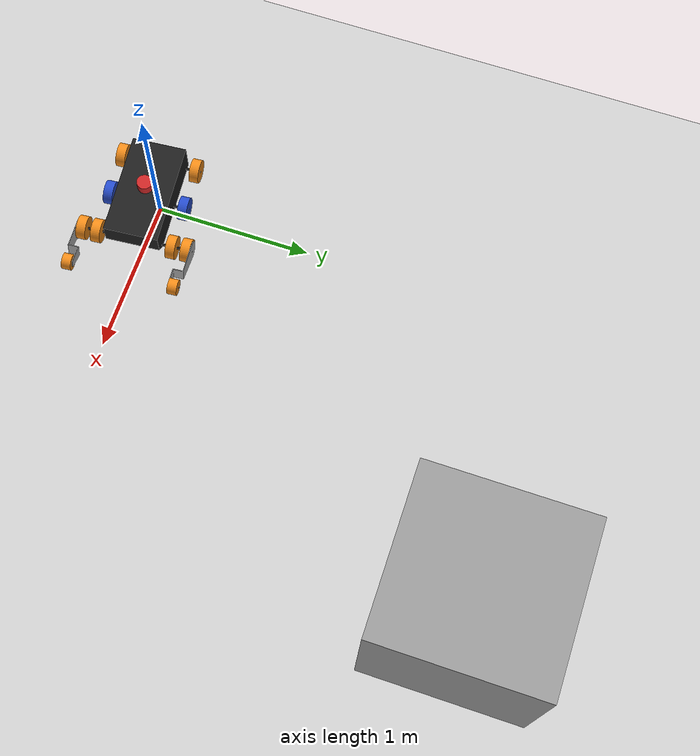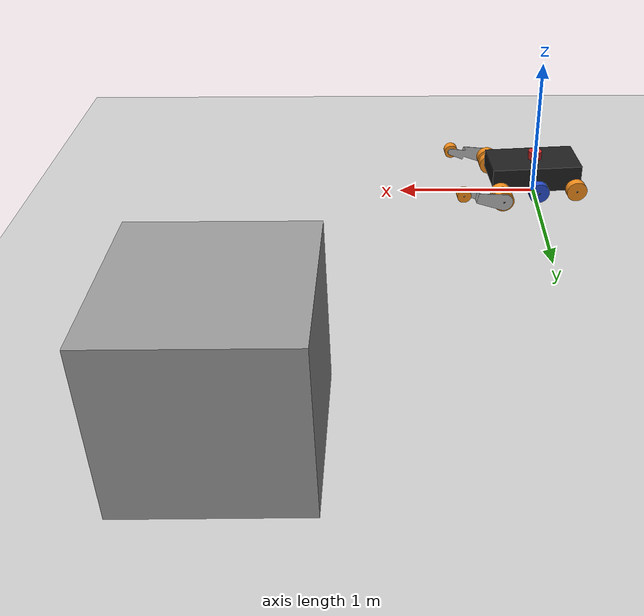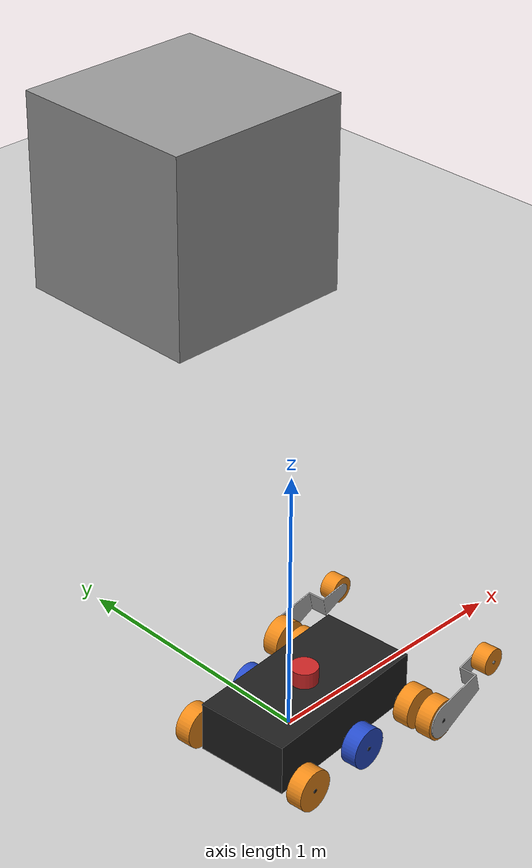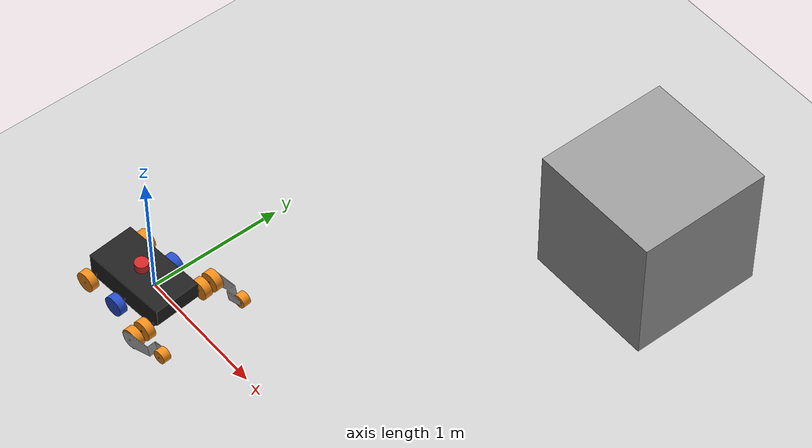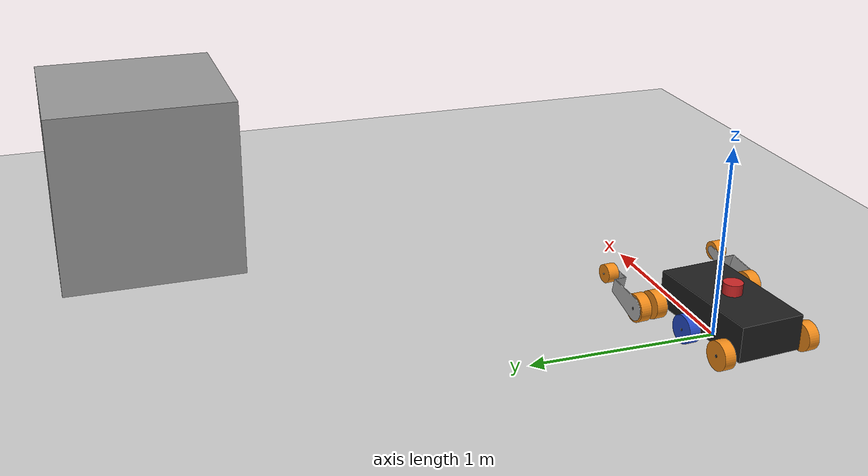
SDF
<sdf version="1.7">
 <world name="default">
  <light name="sun" type="directional">
   <pose>0 0 10 0 -0 0</pose>
   <diffuse>0.8 0.8 0.8 1</diffuse>
   <specular>0.2 0.2 0.2 1</specular>
   <attenuation>
    <range>1000</range>
    <constant>0.9</constant>
    <linear>0.01</linear>
    <quadratic>0.001</quadratic>
   </attenuation>
   <direction>-0.5 0.1 -0.9</direction>
   <spot><inner_angle>0</inner_angle><outer_angle>0</outer_angle><falloff>0</falloff></spot>
  </light>
  <model name="ground_plane">
   <static>1</static>
   <link name="link">
    <collision name="collision">
     <geometry><plane><normal>0 0 1</normal><size>100 100</size></plane></geometry>
     <surface><friction><ode><mu>100</mu><mu2>50</mu2></ode></friction></surface>
    </collision>
    <visual name="visual">
     <cast_shadows>0</cast_shadows>
     <geometry><plane><normal>0 0 1</normal><size>100 100</size></plane></geometry>
     <material>
      <script><uri>file://media/materials/scripts/gazebo.material</uri><name>Gazebo/Grey</name></script>
     </material>
    </visual>
   </link>
  </model>
  <gravity>0 0 -9.8</gravity>
  <magnetic_field>6e-06 2.3e-05 -4.2e-05</magnetic_field>
  <atmosphere type="adiabatic"/>
  <physics type="ode">
   <max_step_size>0.001</max_step_size>
   <real_time_factor>1</real_time_factor>
   <real_time_update_rate>1000</real_time_update_rate>
  </physics>
  <scene><ambient>0.4 0.4 0.4 1</ambient><background>0.7 0.7 0.7 1</background><shadows>1</shadows></scene>
  <spherical_coordinates>
   <surface_model>EARTH_WGS84</surface_model>
   <latitude_deg>0</latitude_deg>
   <longitude_deg>0</longitude_deg>
   <elevation>0</elevation>
   <heading_deg>0</heading_deg>
  </spherical_coordinates>
  <model name="hendbot">
   <link name="base_link">
    <inertial>
     <pose>-0.003005 -0 0.083073 0 -0 0</pose>
     <mass>54.9089</mass>
     <inertia>
      <ixx>1.31716</ixx>
      <ixy>-1.29347e-07</ixy>
      <ixz>-0.0104342</ixz>
      <iyy>2.67172</iyy>
      <iyz>1.97052e-07</iyz>
      <izz>3.62612</izz>
     </inertia>
    </inertial>
    <collision name="base_link_fixed_joint_lump__hend_link_collision">
     <pose>-0.33246 0 0 0 -0 0</pose>
     <geometry><mesh><scale>1 1 1</scale><uri>model://hendbot/meshes/base_link.STL</uri></mesh></geometry>
    </collision>
    <collision name="base_link_fixed_joint_lump__LBW_Link_collision_1">
     <pose>-0.28246 0.215 0.035 1.5708 -1.1717 -3.14159</pose>
     <geometry><mesh><scale>1 1 1</scale><uri>model://hendbot/meshes/LBW_Link.STL</uri></mesh></geometry>
     <surface><friction><ode><mu>0.1</mu><mu2>0.1</mu2></ode></friction></surface>
    </collision>
    <collision name="base_link_fixed_joint_lump__LFW_Link_collision_2">
     <pose>0.28245 0.215 0.035103 1.5708 0.76776 3.14159</pose>
     <geometry><mesh><scale>1 1 1</scale><uri>model://hendbot/meshes/LFW_Link.STL</uri></mesh></geometry>
     <surface><friction><ode><mu>0.1</mu><mu2>0.1</mu2></ode></friction></surface>
    </collision>
    <collision name="base_link_fixed_joint_lump__RBW_Link_collision_3">
     <pose>-0.28246 -0.215 0.035 -1.5708 0.11175 -0</pose>
     <geometry><mesh><scale>1 1 1</scale><uri>model://hendbot/meshes/RBW_Link.STL</uri></mesh></geometry>
     <surface><friction><ode><mu>0.1</mu><mu2>0.1</mu2></ode></friction></surface>
    </collision>
    <collision name="base_link_fixed_joint_lump__RFW_Link_collision_4">
     <pose>0.28245 -0.215 0.035103 1.5708 0.34292 3.14159</pose>
     <geometry><mesh><scale>1 1 1</scale><uri>model://hendbot/meshes/RFW_Link.STL</uri></mesh></geometry>
     <surface><friction><ode><mu>0.1</mu><mu2>0.1</mu2></ode></friction></surface>
    </collision>
    <collision name="base_link_fixed_joint_lump__laser_frame_collision_5">
     <pose>-0.01246 0 0.22 0 -0 0</pose>
     <geometry><cylinder><length>0.06</length><radius>0.05</radius></cylinder></geometry>
    </collision>
    <visual name="base_link_fixed_joint_lump__hend_link_visual">
     <pose>-0.33246 0 0 0 -0 0</pose>
     <geometry><mesh><scale>1 1 1</scale><uri>model://hendbot/meshes/base_link.STL</uri></mesh></geometry>
     <material>
      <script><name>Gazebo/Black</name><uri>file://media/materials/scripts/gazebo.material</uri></script>
     </material>
    </visual>
    <visual name="base_link_fixed_joint_lump__LBW_Link_visual_1">
     <pose>-0.28246 0.215 0.035 1.5708 -1.1717 -3.14159</pose>
     <geometry><mesh><scale>1 1 1</scale><uri>model://hendbot/meshes/LBW_Link.STL</uri></mesh></geometry>
     <material>
      <script><name>Gazebo/Orange</name><uri>file://media/materials/scripts/gazebo.material</uri></script>
     </material>
    </visual>
    <visual name="base_link_fixed_joint_lump__LFW_Link_visual_2">
     <pose>0.28245 0.215 0.035103 1.5708 0.76776 3.14159</pose>
     <geometry><mesh><scale>1 1 1</scale><uri>model://hendbot/meshes/LFW_Link.STL</uri></mesh></geometry>
     <material>
      <script><name>Gazebo/Orange</name><uri>file://media/materials/scripts/gazebo.material</uri></script>
     </material>
    </visual>
    <visual name="base_link_fixed_joint_lump__RBW_Link_visual_3">
     <pose>-0.28246 -0.215 0.035 -1.5708 0.11175 -0</pose>
     <geometry><mesh><scale>1 1 1</scale><uri>model://hendbot/meshes/RBW_Link.STL</uri></mesh></geometry>
     <material>
      <script><name>Gazebo/Orange</name><uri>file://media/materials/scripts/gazebo.material</uri></script>
     </material>
    </visual>
    <visual name="base_link_fixed_joint_lump__RFW_Link_visual_4">
     <pose>0.28245 -0.215 0.035103 1.5708 0.34292 3.14159</pose>
     <geometry><mesh><scale>1 1 1</scale><uri>model://hendbot/meshes/RFW_Link.STL</uri></mesh></geometry>
     <material>
      <script><name>Gazebo/Orange</name><uri>file://media/materials/scripts/gazebo.material</uri></script>
     </material>
    </visual>
    <visual name="base_link_fixed_joint_lump__laser_frame_visual_5">
     <pose>-0.01246 0 0.22 0 -0 0</pose>
     <geometry><cylinder><length>0.06</length><radius>0.05</radius></cylinder></geometry>
     <material>
      <script><name>Gazebo/Red</name><uri>file://media/materials/scripts/gazebo.material</uri></script>
     </material>
    </visual>
    <sensor name="laser" type="ray">
     <visualize>0</visualize>
     <update_rate>10</update_rate>
     <ray>
      <scan>
       <horizontal>
        <samples>360</samples>
        <min_angle>-3.14</min_angle>
        <max_angle>3.14</max_angle>
        <resolution>1</resolution>
       </horizontal>
       <vertical><samples>1</samples><min_angle>0</min_angle><max_angle>0</max_angle></vertical>
      </scan>
      <range><min>0.1</min><max>12</max></range>
     </ray>
     <plugin name="laser_controller" filename="libgazebo_ros_ray_sensor.so">
      <ros><argument>~/out:=scan</argument></ros>
      <output_type>sensor_msgs/LaserScan</output_type>
      <frame_name>laser_frame</frame_name>
     </plugin>
     <pose>-0.01246 0 0.22 0 -0 0</pose>
    </sensor>
   </link>
   <joint name="WLBelt_Joint" type="revolute">
    <pose relative_to="base_link">4e-05 0.215 0.035052 1.5708 0.35384 3.14159</pose>
    <parent>base_link</parent>
    <child>WLBelt_Link</child>
    <axis>
     <xyz>0 0 1</xyz>
     <limit><effort>100</effort><velocity>100</velocity><lower>-1e+16</lower><upper>1e+16</upper></limit>
     <dynamics>
      <damping>0.1</damping>
      <friction>0.1</friction>
      <spring_reference>0</spring_reference>
      <spring_stiffness>0</spring_stiffness>
     </dynamics>
    </axis>
   </joint>
   <link name="WLBelt_Link">
    <pose relative_to="WLBelt_Joint">0 0 0 0 -0 0</pose>
    <inertial>
     <pose>6e-06 2e-06 0.03 0 -0 0</pose>
     <mass>2.8302</mass>
     <inertia>
      <ixx>0.00487432</ixx>
      <ixy>1.0842e-19</ixy>
      <ixz>-5.95761e-21</ixz>
      <iyy>0.00487432</iyy>
      <iyz>-3.72125e-22</iyz>
      <izz>0.00805052</izz>
     </inertia>
    </inertial>
    <collision name="WLBelt_Link_collision">
     <geometry><mesh><scale>1 1 1</scale><uri>model://hendbot/meshes/WLBelt_Link.STL</uri></mesh></geometry>
    </collision>
    <visual name="WLBelt_Link_visual">
     <geometry><mesh><scale>1 1 1</scale><uri>model://hendbot/meshes/WLBelt_Link.STL</uri></mesh></geometry>
     <material>
      <script><name>Gazebo/Blue</name><uri>file://media/materials/scripts/gazebo.material</uri></script>
     </material>
    </visual>
   </link>
   <joint name="WRBelt_Joint" type="revolute">
    <pose relative_to="base_link">4e-05 -0.215 0.035052 -1.5708 0.65732 0</pose>
    <parent>base_link</parent>
    <child>WRBelt_Link</child>
    <axis>
     <xyz>0 0 1</xyz>
     <limit><effort>100</effort><velocity>100</velocity><lower>-1e+16</lower><upper>1e+16</upper></limit>
     <dynamics>
      <damping>0.1</damping>
      <friction>0.1</friction>
      <spring_reference>0</spring_reference>
      <spring_stiffness>0</spring_stiffness>
     </dynamics>
    </axis>
   </joint>
   <link name="WRBelt_Link">
    <pose relative_to="WRBelt_Joint">0 0 0 0 -0 0</pose>
    <inertial>
     <pose>-5e-06 4e-06 -0.03 0 -0 0</pose>
     <mass>2.8302</mass>
     <inertia>
      <ixx>0.00487432</ixx>
      <ixy>2.1684e-19</ixy>
      <ixz>9.79617e-36</ixz>
      <iyy>0.00487432</iyy>
      <iyz>7.94184e-36</iyz>
      <izz>0.00805052</izz>
     </inertia>
    </inertial>
    <collision name="WRBelt_Link_collision">
     <geometry><mesh><scale>1 1 1</scale><uri>model://hendbot/meshes/WRBelt_Link.STL</uri></mesh></geometry>
    </collision>
    <visual name="WRBelt_Link_visual">
     <geometry><mesh><scale>1 1 1</scale><uri>model://hendbot/meshes/WRBelt_Link.STL</uri></mesh></geometry>
     <material>
      <script><name>Gazebo/Blue</name><uri>file://media/materials/scripts/gazebo.material</uri></script>
     </material>
    </visual>
   </link>
   <joint name="LFFW_Joint" type="revolute">
    <pose relative_to="base_link">0.28245 0.30998 0.035103 1.5708 -1.005 -3.14159</pose>
    <parent>base_link</parent>
    <child>LFFW_Link</child>
    <axis>
     <xyz>0 0 1</xyz>
     <limit><effort>100</effort><velocity>100</velocity><lower>-1e+16</lower><upper>1e+16</upper></limit>
     <dynamics>
      <damping>0.1</damping>
      <friction>0.1</friction>
      <spring_reference>0</spring_reference>
      <spring_stiffness>0</spring_stiffness>
     </dynamics>
    </axis>
   </joint>
   <link name="LFFW_Link">
    <pose relative_to="LFFW_Joint">0 0 0 0 -0 0</pose>
    <inertial>
     <pose>-0.016199 0.044173 0.030887 0 -0 0</pose>
     <mass>3.50118</mass>
     <inertia>
      <ixx>0.0402368</ixx>
      <ixy>0.0126939</ixy>
      <ixz>-6.84372e-05</ixz>
      <iyy>0.0103212</iyy>
      <iyz>0.00018326</iyz>
      <izz>0.0481955</izz>
     </inertia>
    </inertial>
    <collision name="LFFW_Link_collision">
     <geometry><mesh><scale>1 1 1</scale><uri>model://hendbot/meshes/LFFW_Link.STL</uri></mesh></geometry>
     <surface><friction><ode><mu>0.1</mu><mu2>0.1</mu2></ode></friction></surface>
    </collision>
    <collision name="LFFW_Link_fixed_joint_lump__LF_Link_collision_1">
     <pose>0 0 0 0 -0 1.91705</pose>
     <geometry><mesh><scale>1 1 1</scale><uri>model://hendbot/meshes/LF_Link.STL</uri></mesh></geometry>
    </collision>
    <collision name="LFFW_Link_fixed_joint_lump__LW_Link_collision_2">
     <pose>-0.103425 0.281385 0 0 0 -2.57584</pose>
     <geometry><mesh><scale>1 1 1</scale><uri>model://hendbot/meshes/LW_Link.STL</uri></mesh></geometry>
     <surface><friction><ode><mu>0.1</mu><mu2>0.1</mu2></ode></friction></surface>
    </collision>
    <visual name="LFFW_Link_visual">
     <geometry><mesh><scale>1 1 1</scale><uri>model://hendbot/meshes/LFFW_Link.STL</uri></mesh></geometry>
     <material>
      <script><name>Gazebo/Orange</name><uri>file://media/materials/scripts/gazebo.material</uri></script>
     </material>
    </visual>
    <visual name="LFFW_Link_fixed_joint_lump__LF_Link_visual_1">
     <pose>0 0 0 0 -0 1.91705</pose>
     <geometry><mesh><scale>1 1 1</scale><uri>model://hendbot/meshes/LF_Link.STL</uri></mesh></geometry>
    </visual>
    <visual name="LFFW_Link_fixed_joint_lump__LW_Link_visual_2">
     <pose>-0.103425 0.281385 0 0 0 -2.57584</pose>
     <geometry><mesh><scale>1 1 1</scale><uri>model://hendbot/meshes/LW_Link.STL</uri></mesh></geometry>
     <material>
      <script><name>Gazebo/Orange</name><uri>file://media/materials/scripts/gazebo.material</uri></script>
     </material>
    </visual>
   </link>
   <joint name="RFFW_Joint" type="revolute">
    <pose relative_to="base_link">0.28245 -0.31 0.035103 -1.5708 -0.76747 0</pose>
    <parent>base_link</parent>
    <child>RFFW_Link</child>
    <axis>
     <xyz>0 0 1</xyz>
     <limit><effort>100</effort><velocity>100</velocity><lower>-1e+16</lower><upper>1e+16</upper></limit>
     <dynamics>
      <damping>0.1</damping>
      <friction>0.1</friction>
      <spring_reference>0</spring_reference>
      <spring_stiffness>0</spring_stiffness>
     </dynamics>
    </axis>
   </joint>
   <link name="RFFW_Link">
    <pose relative_to="RFFW_Joint">0 0 0 0 -0 0</pose>
    <inertial>
     <pose>0.041307 0.022524 -0.030886 0 -0 0</pose>
     <mass>3.50118</mass>
     <inertia>
      <ixx>0.0146412</ixx>
      <ixy>-0.0164836</ixy>
      <ixz>-0.000172565</ixz>
      <iyy>0.0359161</iyy>
      <iyz>-9.27813e-05</iyz>
      <izz>0.0481951</izz>
     </inertia>
    </inertial>
    <collision name="RFFW_Link_collision">
     <geometry><mesh><scale>1 1 1</scale><uri>model://hendbot/meshes/RFFW_Link.STL</uri></mesh></geometry>
     <surface><friction><ode><mu>0.1</mu><mu2>0.1</mu2></ode></friction></surface>
    </collision>
    <collision name="RFFW_Link_fixed_joint_lump__RF_Link_collision_1">
     <pose>0 0.01 0 0 -0 0.504452</pose>
     <geometry><mesh><scale>1 1 1</scale><uri>model://hendbot/meshes/RF_Link.STL</uri></mesh></geometry>
    </collision>
    <collision name="RFFW_Link_fixed_joint_lump__RW_Link_collision_2">
     <pose>0.263308 0.143325 0 0 0 -0.803348</pose>
     <geometry><mesh><scale>1 1 1</scale><uri>model://hendbot/meshes/RW_Link.STL</uri></mesh></geometry>
     <surface><friction><ode><mu>0.1</mu><mu2>0.1</mu2></ode></friction></surface>
    </collision>
    <visual name="RFFW_Link_visual">
     <geometry><mesh><scale>1 1 1</scale><uri>model://hendbot/meshes/RFFW_Link.STL</uri></mesh></geometry>
     <material>
      <script><name>Gazebo/Orange</name><uri>file://media/materials/scripts/gazebo.material</uri></script>
     </material>
    </visual>
    <visual name="RFFW_Link_fixed_joint_lump__RF_Link_visual_1">
     <pose>0 0.01 0 0 -0 0.504452</pose>
     <geometry><mesh><scale>1 1 1</scale><uri>model://hendbot/meshes/RF_Link.STL</uri></mesh></geometry>
    </visual>
    <visual name="RFFW_Link_fixed_joint_lump__RW_Link_visual_2">
     <pose>0.263308 0.143325 0 0 0 -0.803348</pose>
     <geometry><mesh><scale>1 1 1</scale><uri>model://hendbot/meshes/RW_Link.STL</uri></mesh></geometry>
     <material>
      <script><name>Gazebo/Orange</name><uri>file://media/materials/scripts/gazebo.material</uri></script>
     </material>
    </visual>
   </link>
   <static>0</static>
   <plugin name="diff_drive" filename="libgazebo_ros_diff_drive.so">
    <left_joint>WLBelt_Joint</left_joint>
    <right_joint>WRBelt_Joint</right_joint>
    <wheel_separation>0.43</wheel_separation>
    <wheel_diameter>0.17</wheel_diameter>
    <max_wheel_torque>200</max_wheel_torque>
    <max_wheel_acceleration>10.0</max_wheel_acceleration>
    <odometry_frame>odom</odometry_frame>
    <robot_base_frame>base_link</robot_base_frame>
    <publish_odom>1</publish_odom>
    <publish_odom_tf>1</publish_odom_tf>
    <publish_wheel_tf>1</publish_wheel_tf>
   </plugin>
   <pose>0.004979 -0.07636 0.039868 -0.000194 7.7e-05 0.085776</pose>
  </model>
  <model name="unit_box">
   <pose>1.90958 2.59818 0.5 0 -0 0</pose>
   <link name="link">
    <inertial>
     <mass>1</mass>
     <inertia>
      <ixx>0.166667</ixx>
      <ixy>0</ixy>
      <ixz>0</ixz>
      <iyy>0.166667</iyy>
      <iyz>0</iyz>
      <izz>0.166667</izz>
     </inertia>
    </inertial>
    <collision name="collision"><geometry><box><size>1 1 1</size></box></geometry></collision>
    <visual name="visual">
     <geometry><box><size>1 1 1</size></box></geometry>
     <material>
      <script><name>Gazebo/Grey</name><uri>file://media/materials/scripts/gazebo.material</uri></script>
     </material>
    </visual>
   </link>
  </model>
 </world>
</sdf>
